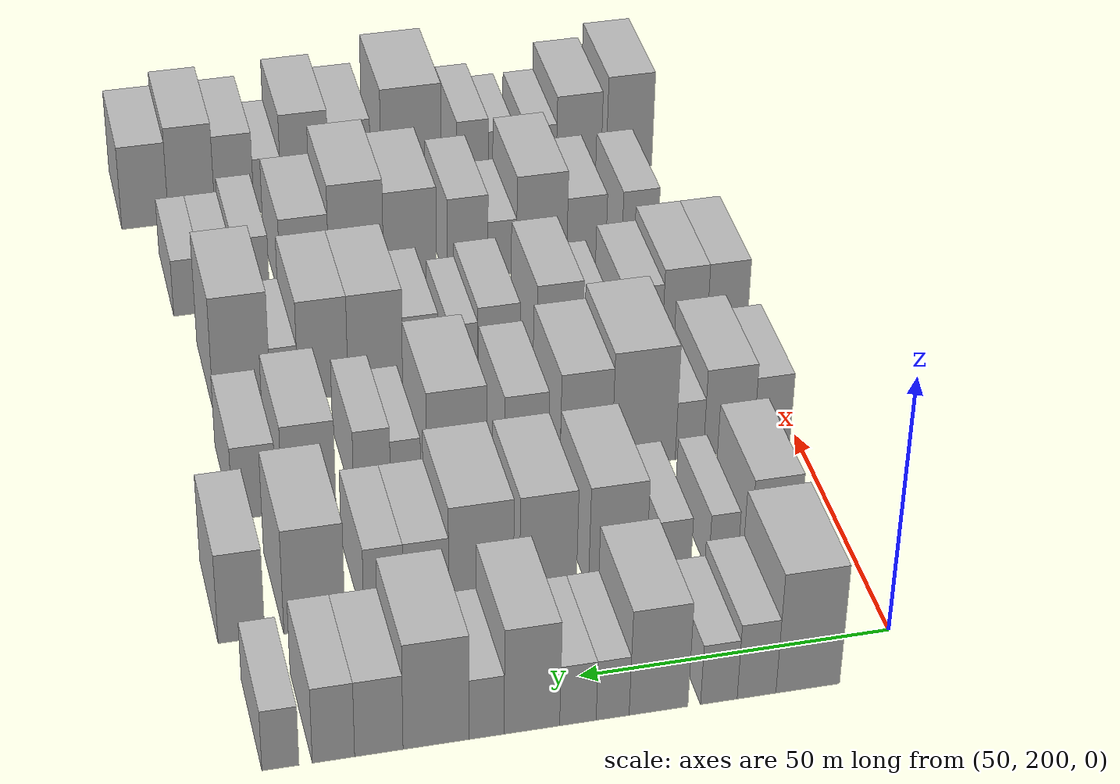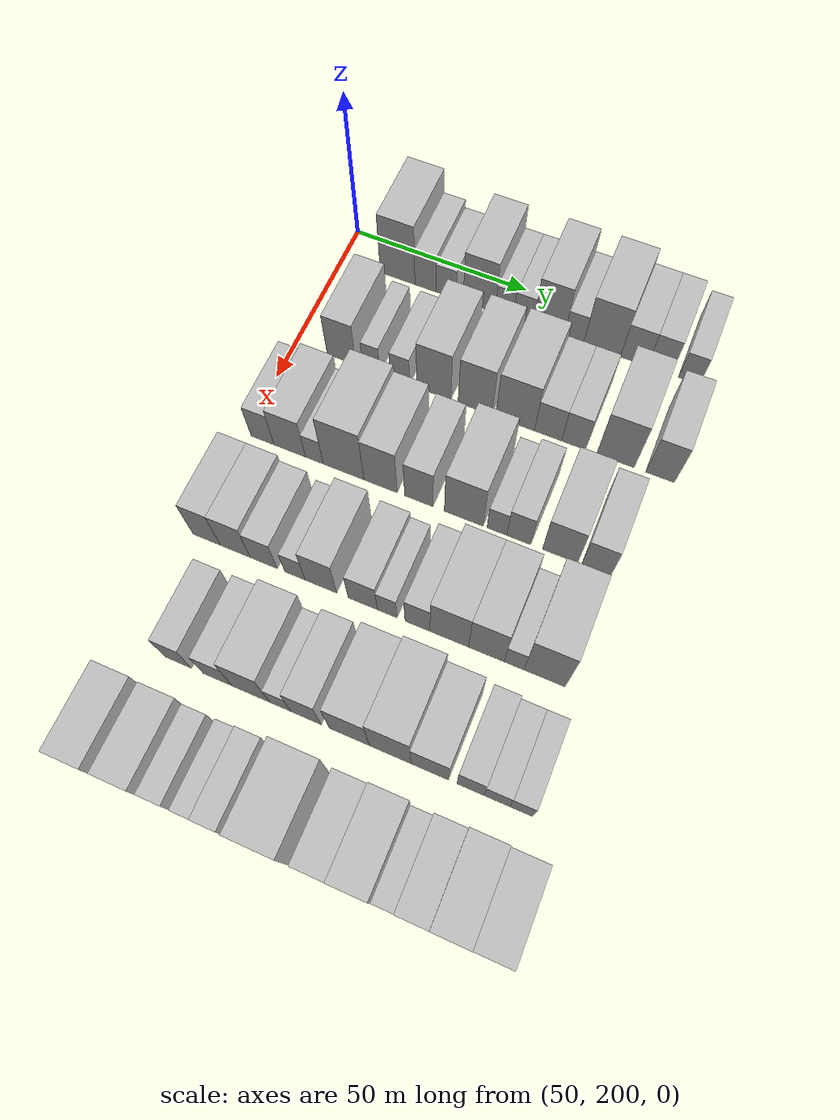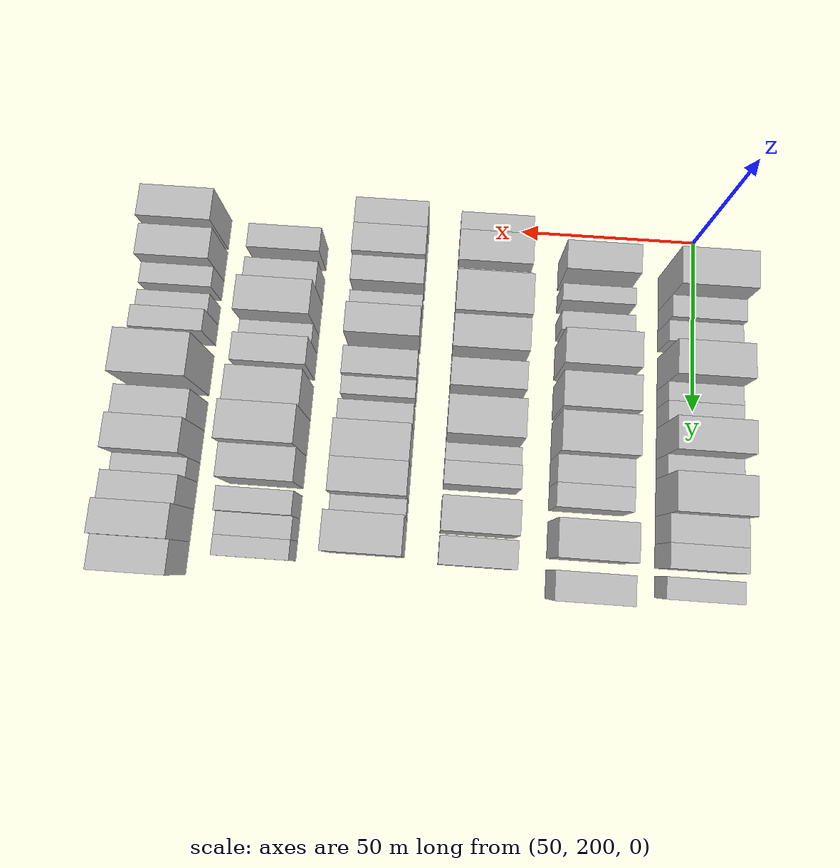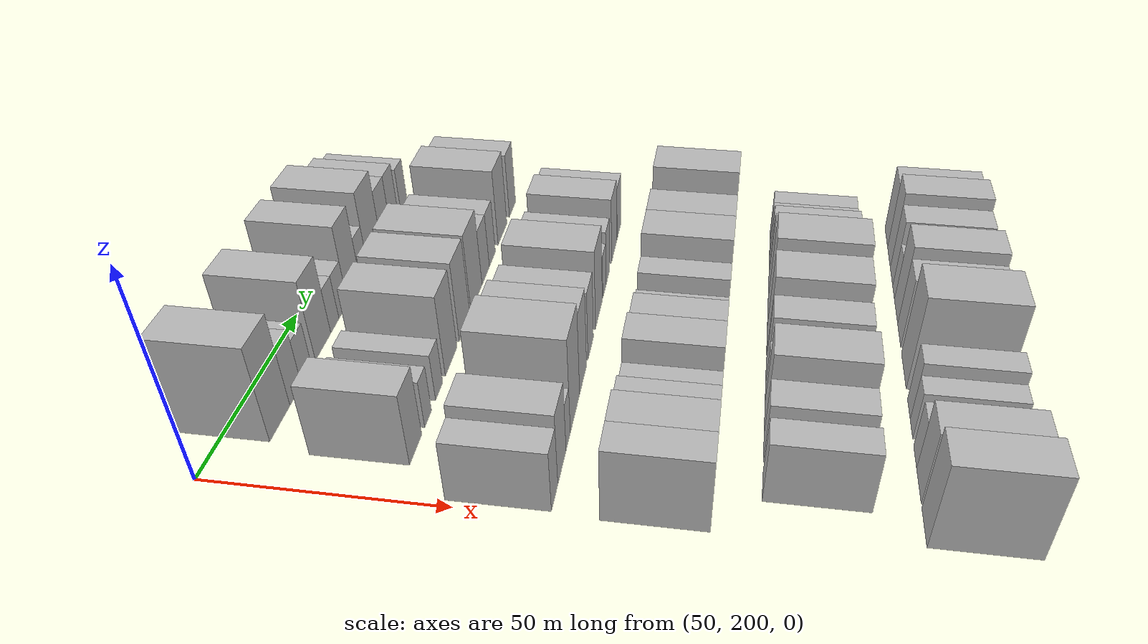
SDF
<sdf version="1.6">
 <world name="default">
  <model name="building_78">
   <static>1</static>
   <pose>50.0000 216.4275 0 0.000000 0.000000 0.000000</pose>
   <link name="link">
    <pose>0 0 12.00 0 0 0</pose>
    <collision name="collision"><geometry><box><size>20.0000 10.1967 24.0000</size></box></geometry></collision>
    <visual name="visual">
     <cast_shadows>0</cast_shadows>
     <geometry><box><size>20.0000 10.1967 24.0000</size></box></geometry>
     <material>
      <script>
       <uri>model://HANNAS_wall/materials/scripts</uri>
       <uri>model://HANNAS_wall/materials/textures</uri>
       <name>vrc/HANNAS_wall</name>
      </script>
     </material>
    </visual>
   </link>
  </model>
  <model name="building_79">
   <static>1</static>
   <pose>50.0000 224.6116 0 0.000000 0.000000 0.000000</pose>
   <link name="link">
    <pose>0 0 7.50 0 0 0</pose>
    <collision name="collision"><geometry><box><size>20.0000 6.1714 15.0000</size></box></geometry></collision>
    <visual name="visual">
     <cast_shadows>0</cast_shadows>
     <geometry><box><size>20.0000 6.1714 15.0000</size></box></geometry>
     <material>
      <script>
       <uri>model://HANNAS_wall/materials/scripts</uri>
       <uri>model://HANNAS_wall/materials/textures</uri>
       <name>vrc/HANNAS_wall</name>
      </script>
     </material>
    </visual>
   </link>
  </model>
  <model name="building_80">
   <static>1</static>
   <pose>50.0000 230.5987 0 0.000000 0.000000 0.000000</pose>
   <link name="link">
    <pose>0 0 6.00 0 0 0</pose>
    <collision name="collision"><geometry><box><size>20.0000 5.8029 12.0000</size></box></geometry></collision>
    <visual name="visual">
     <cast_shadows>0</cast_shadows>
     <geometry><box><size>20.0000 5.8029 12.0000</size></box></geometry>
     <material>
      <script>
       <uri>model://HANNAS_wall/materials/scripts</uri>
       <uri>model://HANNAS_wall/materials/textures</uri>
       <name>vrc/HANNAS_wall</name>
      </script>
     </material>
    </visual>
   </link>
  </model>
  <model name="building_81">
   <static>1</static>
   <pose>50.0000 240.1292 0 0.000000 0.000000 0.000000</pose>
   <link name="link">
    <pose>0 0 10.50 0 0 0</pose>
    <collision name="collision"><geometry><box><size>20.0000 9.2581 21.0000</size></box></geometry></collision>
    <visual name="visual">
     <cast_shadows>0</cast_shadows>
     <geometry><box><size>20.0000 9.2581 21.0000</size></box></geometry>
     <material>
      <script>
       <uri>model://HANNAS_wall/materials/scripts</uri>
       <uri>model://HANNAS_wall/materials/textures</uri>
       <name>vrc/HANNAS_wall</name>
      </script>
     </material>
    </visual>
   </link>
  </model>
  <model name="building_82">
   <static>1</static>
   <pose>50.0000 247.3416 0 0.000000 0.000000 0.000000</pose>
   <link name="link">
    <pose>0 0 6.00 0 0 0</pose>
    <collision name="collision"><geometry><box><size>20.0000 5.1668 12.0000</size></box></geometry></collision>
    <visual name="visual">
     <cast_shadows>0</cast_shadows>
     <geometry><box><size>20.0000 5.1668 12.0000</size></box></geometry>
     <material>
      <script>
       <uri>model://HANNAS_wall/materials/scripts</uri>
       <uri>model://HANNAS_wall/materials/textures</uri>
       <name>vrc/HANNAS_wall</name>
      </script>
     </material>
    </visual>
   </link>
  </model>
  <model name="building_83">
   <static>1</static>
   <pose>50.0000 252.7726 0 0.000000 0.000000 0.000000</pose>
   <link name="link">
    <pose>0 0 6.00 0 0 0</pose>
    <collision name="collision"><geometry><box><size>20.0000 5.6951 12.0000</size></box></geometry></collision>
    <visual name="visual">
     <cast_shadows>0</cast_shadows>
     <geometry><box><size>20.0000 5.6951 12.0000</size></box></geometry>
     <material>
      <script>
       <uri>model://HANNAS_wall/materials/scripts</uri>
       <uri>model://HANNAS_wall/materials/textures</uri>
       <name>vrc/HANNAS_wall</name>
      </script>
     </material>
    </visual>
   </link>
  </model>
  <model name="building_84">
   <static>1</static>
   <pose>50.0000 259.9473 0 0.000000 0.000000 0.000000</pose>
   <link name="link">
    <pose>0 0 10.50 0 0 0</pose>
    <collision name="collision"><geometry><box><size>20.0000 8.6542 21.0000</size></box></geometry></collision>
    <visual name="visual">
     <cast_shadows>0</cast_shadows>
     <geometry><box><size>20.0000 8.6542 21.0000</size></box></geometry>
     <material>
      <script>
       <uri>model://HANNAS_wall/materials/scripts</uri>
       <uri>model://HANNAS_wall/materials/textures</uri>
       <name>vrc/HANNAS_wall</name>
      </script>
     </material>
    </visual>
   </link>
  </model>
  <model name="building_85">
   <static>1</static>
   <pose>50.0000 266.9659 0 0.000000 0.000000 0.000000</pose>
   <link name="link">
    <pose>0 0 6.00 0 0 0</pose>
    <collision name="collision"><geometry><box><size>20.0000 5.3829 12.0000</size></box></geometry></collision>
    <visual name="visual">
     <cast_shadows>0</cast_shadows>
     <geometry><box><size>20.0000 5.3829 12.0000</size></box></geometry>
     <material>
      <script>
       <uri>model://HANNAS_wall/materials/scripts</uri>
       <uri>model://HANNAS_wall/materials/textures</uri>
       <name>vrc/HANNAS_wall</name>
      </script>
     </material>
    </visual>
   </link>
  </model>
  <model name="building_86">
   <static>1</static>
   <pose>50.0000 274.7213 0 0.000000 0.000000 0.000000</pose>
   <link name="link">
    <pose>0 0 10.50 0 0 0</pose>
    <collision name="collision"><geometry><box><size>20.0000 10.1280 21.0000</size></box></geometry></collision>
    <visual name="visual">
     <cast_shadows>0</cast_shadows>
     <geometry><box><size>20.0000 10.1280 21.0000</size></box></geometry>
     <material>
      <script>
       <uri>model://HANNAS_wall/materials/scripts</uri>
       <uri>model://HANNAS_wall/materials/textures</uri>
       <name>vrc/HANNAS_wall</name>
      </script>
     </material>
    </visual>
   </link>
  </model>
  <model name="building_87">
   <static>1</static>
   <pose>50.0000 283.4766 0 0.000000 0.000000 0.000000</pose>
   <link name="link">
    <pose>0 0 7.50 0 0 0</pose>
    <collision name="collision"><geometry><box><size>20.0000 7.3825 15.0000</size></box></geometry></collision>
    <visual name="visual">
     <cast_shadows>0</cast_shadows>
     <geometry><box><size>20.0000 7.3825 15.0000</size></box></geometry>
     <material>
      <script>
       <uri>model://HANNAS_wall/materials/scripts</uri>
       <uri>model://HANNAS_wall/materials/textures</uri>
       <name>vrc/HANNAS_wall</name>
      </script>
     </material>
    </visual>
   </link>
  </model>
  <model name="building_88">
   <static>1</static>
   <pose>50.0000 290.3826 0 0.000000 0.000000 0.000000</pose>
   <link name="link">
    <pose>0 0 7.50 0 0 0</pose>
    <collision name="collision"><geometry><box><size>20.0000 6.4296 15.0000</size></box></geometry></collision>
    <visual name="visual">
     <cast_shadows>0</cast_shadows>
     <geometry><box><size>20.0000 6.4296 15.0000</size></box></geometry>
     <material>
      <script>
       <uri>model://HANNAS_wall/materials/scripts</uri>
       <uri>model://HANNAS_wall/materials/textures</uri>
       <name>vrc/HANNAS_wall</name>
      </script>
     </material>
    </visual>
   </link>
  </model>
  <model name="building_89">
   <static>1</static>
   <pose>50.0000 298.4039 0 0.000000 0.000000 0.000000</pose>
   <link name="link">
    <pose>0 0 6.00 0 0 0</pose>
    <collision name="collision"><geometry><box><size>20.0000 5.6130 12.0000</size></box></geometry></collision>
    <visual name="visual">
     <cast_shadows>0</cast_shadows>
     <geometry><box><size>20.0000 5.6130 12.0000</size></box></geometry>
     <material>
      <script>
       <uri>model://HANNAS_wall/materials/scripts</uri>
       <uri>model://HANNAS_wall/materials/textures</uri>
       <name>vrc/HANNAS_wall</name>
      </script>
     </material>
    </visual>
   </link>
  </model>
  <model name="building_187">
   <static>1</static>
   <pose>79.0000 213.1528 0 0.000000 0.000000 0.000000</pose>
   <link name="link">
    <pose>0 0 9.00 0 0 0</pose>
    <collision name="collision"><geometry><box><size>20.0000 8.1714 18.0000</size></box></geometry></collision>
    <visual name="visual">
     <cast_shadows>0</cast_shadows>
     <geometry><box><size>20.0000 8.1714 18.0000</size></box></geometry>
     <material>
      <script>
       <uri>model://HANNAS_wall/materials/scripts</uri>
       <uri>model://HANNAS_wall/materials/textures</uri>
       <name>vrc/HANNAS_wall</name>
      </script>
     </material>
    </visual>
   </link>
  </model>
  <model name="building_188">
   <static>1</static>
   <pose>79.0000 221.6560 0 0.000000 0.000000 0.000000</pose>
   <link name="link">
    <pose>0 0 6.00 0 0 0</pose>
    <collision name="collision"><geometry><box><size>20.0000 4.8351 12.0000</size></box></geometry></collision>
    <visual name="visual">
     <cast_shadows>0</cast_shadows>
     <geometry><box><size>20.0000 4.8351 12.0000</size></box></geometry>
     <material>
      <script>
       <uri>model://HANNAS_wall/materials/scripts</uri>
       <uri>model://HANNAS_wall/materials/textures</uri>
       <name>vrc/HANNAS_wall</name>
      </script>
     </material>
    </visual>
   </link>
  </model>
  <model name="building_189">
   <static>1</static>
   <pose>79.0000 229.7714 0 0.000000 0.000000 0.000000</pose>
   <link name="link">
    <pose>0 0 6.00 0 0 0</pose>
    <collision name="collision"><geometry><box><size>20.0000 5.3957 12.0000</size></box></geometry></collision>
    <visual name="visual">
     <cast_shadows>0</cast_shadows>
     <geometry><box><size>20.0000 5.3957 12.0000</size></box></geometry>
     <material>
      <script>
       <uri>model://HANNAS_wall/materials/scripts</uri>
       <uri>model://HANNAS_wall/materials/textures</uri>
       <name>vrc/HANNAS_wall</name>
      </script>
     </material>
    </visual>
   </link>
  </model>
  <model name="building_190">
   <static>1</static>
   <pose>79.0000 239.1947 0 0.000000 0.000000 0.000000</pose>
   <link name="link">
    <pose>0 0 10.50 0 0 0</pose>
    <collision name="collision"><geometry><box><size>20.0000 9.4509 21.0000</size></box></geometry></collision>
    <visual name="visual">
     <cast_shadows>0</cast_shadows>
     <geometry><box><size>20.0000 9.4509 21.0000</size></box></geometry>
     <material>
      <script>
       <uri>model://HANNAS_wall/materials/scripts</uri>
       <uri>model://HANNAS_wall/materials/textures</uri>
       <name>vrc/HANNAS_wall</name>
      </script>
     </material>
    </visual>
   </link>
  </model>
  <model name="building_191">
   <static>1</static>
   <pose>79.0000 250.5725 0 0.000000 0.000000 0.000000</pose>
   <link name="link">
    <pose>0 0 10.50 0 0 0</pose>
    <collision name="collision"><geometry><box><size>20.0000 9.3048 21.0000</size></box></geometry></collision>
    <visual name="visual">
     <cast_shadows>0</cast_shadows>
     <geometry><box><size>20.0000 9.3048 21.0000</size></box></geometry>
     <material>
      <script>
       <uri>model://HANNAS_wall/materials/scripts</uri>
       <uri>model://HANNAS_wall/materials/textures</uri>
       <name>vrc/HANNAS_wall</name>
      </script>
     </material>
    </visual>
   </link>
  </model>
  <model name="building_192">
   <static>1</static>
   <pose>79.0000 261.4567 0 0.000000 0.000000 0.000000</pose>
   <link name="link">
    <pose>0 0 10.50 0 0 0</pose>
    <collision name="collision"><geometry><box><size>20.0000 10.4636 21.0000</size></box></geometry></collision>
    <visual name="visual">
     <cast_shadows>0</cast_shadows>
     <geometry><box><size>20.0000 10.4636 21.0000</size></box></geometry>
     <material>
      <script>
       <uri>model://HANNAS_wall/materials/scripts</uri>
       <uri>model://HANNAS_wall/materials/textures</uri>
       <name>vrc/HANNAS_wall</name>
      </script>
     </material>
    </visual>
   </link>
  </model>
  <model name="building_193">
   <static>1</static>
   <pose>79.0000 270.3257 0 0.000000 0.000000 0.000000</pose>
   <link name="link">
    <pose>0 0 7.50 0 0 0</pose>
    <collision name="collision"><geometry><box><size>20.0000 7.2743 15.0000</size></box></geometry></collision>
    <visual name="visual">
     <cast_shadows>0</cast_shadows>
     <geometry><box><size>20.0000 7.2743 15.0000</size></box></geometry>
     <material>
      <script>
       <uri>model://HANNAS_wall/materials/scripts</uri>
       <uri>model://HANNAS_wall/materials/textures</uri>
       <name>vrc/HANNAS_wall</name>
      </script>
     </material>
    </visual>
   </link>
  </model>
  <model name="building_194">
   <static>1</static>
   <pose>79.0000 277.1290 0 0.000000 0.000000 0.000000</pose>
   <link name="link">
    <pose>0 0 7.50 0 0 0</pose>
    <collision name="collision"><geometry><box><size>20.0000 6.3323 15.0000</size></box></geometry></collision>
    <visual name="visual">
     <cast_shadows>0</cast_shadows>
     <geometry><box><size>20.0000 6.3323 15.0000</size></box></geometry>
     <material>
      <script>
       <uri>model://HANNAS_wall/materials/scripts</uri>
       <uri>model://HANNAS_wall/materials/textures</uri>
       <name>vrc/HANNAS_wall</name>
      </script>
     </material>
    </visual>
   </link>
  </model>
  <model name="building_195">
   <static>1</static>
   <pose>79.0000 288.1786 0 0.000000 0.000000 0.000000</pose>
   <link name="link">
    <pose>0 0 10.50 0 0 0</pose>
    <collision name="collision"><geometry><box><size>20.0000 9.7671 21.0000</size></box></geometry></collision>
    <visual name="visual">
     <cast_shadows>0</cast_shadows>
     <geometry><box><size>20.0000 9.7671 21.0000</size></box></geometry>
     <material>
      <script>
       <uri>model://HANNAS_wall/materials/scripts</uri>
       <uri>model://HANNAS_wall/materials/textures</uri>
       <name>vrc/HANNAS_wall</name>
      </script>
     </material>
    </visual>
   </link>
  </model>
  <model name="building_196">
   <static>1</static>
   <pose>79.0000 299.7632 0 0.000000 0.000000 0.000000</pose>
   <link name="link">
    <pose>0 0 9.00 0 0 0</pose>
    <collision name="collision"><geometry><box><size>20.0000 7.4019 18.0000</size></box></geometry></collision>
    <visual name="visual">
     <cast_shadows>0</cast_shadows>
     <geometry><box><size>20.0000 7.4019 18.0000</size></box></geometry>
     <material>
      <script>
       <uri>model://HANNAS_wall/materials/scripts</uri>
       <uri>model://HANNAS_wall/materials/textures</uri>
       <name>vrc/HANNAS_wall</name>
      </script>
     </material>
    </visual>
   </link>
  </model>
  <model name="building_296">
   <static>1</static>
   <pose>108.0000 204.8073 0 0.000000 0.000000 0.000000</pose>
   <link name="link">
    <pose>0 0 7.50 0 0 0</pose>
    <collision name="collision"><geometry><box><size>20.0000 6.4328 15.0000</size></box></geometry></collision>
    <visual name="visual">
     <cast_shadows>0</cast_shadows>
     <geometry><box><size>20.0000 6.4328 15.0000</size></box></geometry>
     <material>
      <script>
       <uri>model://HANNAS_wall/materials/scripts</uri>
       <uri>model://HANNAS_wall/materials/textures</uri>
       <name>vrc/HANNAS_wall</name>
      </script>
     </material>
    </visual>
   </link>
  </model>
  <model name="building_297">
   <static>1</static>
   <pose>108.0000 212.3891 0 0.000000 0.000000 0.000000</pose>
   <link name="link">
    <pose>0 0 9.00 0 0 0</pose>
    <collision name="collision"><geometry><box><size>20.0000 8.7310 18.0000</size></box></geometry></collision>
    <visual name="visual">
     <cast_shadows>0</cast_shadows>
     <geometry><box><size>20.0000 8.7310 18.0000</size></box></geometry>
     <material>
      <script>
       <uri>model://HANNAS_wall/materials/scripts</uri>
       <uri>model://HANNAS_wall/materials/textures</uri>
       <name>vrc/HANNAS_wall</name>
      </script>
     </material>
    </visual>
   </link>
  </model>
  <model name="building_298">
   <static>1</static>
   <pose>108.0000 219.2011 0 0.000000 0.000000 0.000000</pose>
   <link name="link">
    <pose>0 0 6.00 0 0 0</pose>
    <collision name="collision"><geometry><box><size>20.0000 4.8929 12.0000</size></box></geometry></collision>
    <visual name="visual">
     <cast_shadows>0</cast_shadows>
     <geometry><box><size>20.0000 4.8929 12.0000</size></box></geometry>
     <material>
      <script>
       <uri>model://HANNAS_wall/materials/scripts</uri>
       <uri>model://HANNAS_wall/materials/textures</uri>
       <name>vrc/HANNAS_wall</name>
      </script>
     </material>
    </visual>
   </link>
  </model>
  <model name="building_299">
   <static>1</static>
   <pose>108.0000 227.1770 0 0.000000 0.000000 0.000000</pose>
   <link name="link">
    <pose>0 0 12.00 0 0 0</pose>
    <collision name="collision"><geometry><box><size>20.0000 11.0591 24.0000</size></box></geometry></collision>
    <visual name="visual">
     <cast_shadows>0</cast_shadows>
     <geometry><box><size>20.0000 11.0591 24.0000</size></box></geometry>
     <material>
      <script>
       <uri>model://HANNAS_wall/materials/scripts</uri>
       <uri>model://HANNAS_wall/materials/textures</uri>
       <name>vrc/HANNAS_wall</name>
      </script>
     </material>
    </visual>
   </link>
  </model>
  <model name="building_300">
   <static>1</static>
   <pose>108.0000 237.1638 0 0.000000 0.000000 0.000000</pose>
   <link name="link">
    <pose>0 0 10.50 0 0 0</pose>
    <collision name="collision"><geometry><box><size>20.0000 8.9144 21.0000</size></box></geometry></collision>
    <visual name="visual">
     <cast_shadows>0</cast_shadows>
     <geometry><box><size>20.0000 8.9144 21.0000</size></box></geometry>
     <material>
      <script>
       <uri>model://HANNAS_wall/materials/scripts</uri>
       <uri>model://HANNAS_wall/materials/textures</uri>
       <name>vrc/HANNAS_wall</name>
      </script>
     </material>
    </visual>
   </link>
  </model>
  <model name="building_301">
   <static>1</static>
   <pose>108.0000 247.3811 0 0.000000 0.000000 0.000000</pose>
   <link name="link">
    <pose>0 0 9.00 0 0 0</pose>
    <collision name="collision"><geometry><box><size>20.0000 7.5202 18.0000</size></box></geometry></collision>
    <visual name="visual">
     <cast_shadows>0</cast_shadows>
     <geometry><box><size>20.0000 7.5202 18.0000</size></box></geometry>
     <material>
      <script>
       <uri>model://HANNAS_wall/materials/scripts</uri>
       <uri>model://HANNAS_wall/materials/textures</uri>
       <name>vrc/HANNAS_wall</name>
      </script>
     </material>
    </visual>
   </link>
  </model>
  <model name="building_302">
   <static>1</static>
   <pose>108.0000 259.2140 0 0.000000 0.000000 0.000000</pose>
   <link name="link">
    <pose>0 0 10.50 0 0 0</pose>
    <collision name="collision"><geometry><box><size>20.0000 10.1456 21.0000</size></box></geometry></collision>
    <visual name="visual">
     <cast_shadows>0</cast_shadows>
     <geometry><box><size>20.0000 10.1456 21.0000</size></box></geometry>
     <material>
      <script>
       <uri>model://HANNAS_wall/materials/scripts</uri>
       <uri>model://HANNAS_wall/materials/textures</uri>
       <name>vrc/HANNAS_wall</name>
      </script>
     </material>
    </visual>
   </link>
  </model>
  <model name="building_303">
   <static>1</static>
   <pose>108.0000 267.8249 0 0.000000 0.000000 0.000000</pose>
   <link name="link">
    <pose>0 0 6.00 0 0 0</pose>
    <collision name="collision"><geometry><box><size>20.0000 5.0761 12.0000</size></box></geometry></collision>
    <visual name="visual">
     <cast_shadows>0</cast_shadows>
     <geometry><box><size>20.0000 5.0761 12.0000</size></box></geometry>
     <material>
      <script>
       <uri>model://HANNAS_wall/materials/scripts</uri>
       <uri>model://HANNAS_wall/materials/textures</uri>
       <name>vrc/HANNAS_wall</name>
      </script>
     </material>
    </visual>
   </link>
  </model>
  <model name="building_304">
   <static>1</static>
   <pose>108.0000 273.4469 0 0.000000 0.000000 0.000000</pose>
   <link name="link">
    <pose>0 0 7.50 0 0 0</pose>
    <collision name="collision"><geometry><box><size>20.0000 6.1680 15.0000</size></box></geometry></collision>
    <visual name="visual">
     <cast_shadows>0</cast_shadows>
     <geometry><box><size>20.0000 6.1680 15.0000</size></box></geometry>
     <material>
      <script>
       <uri>model://HANNAS_wall/materials/scripts</uri>
       <uri>model://HANNAS_wall/materials/textures</uri>
       <name>vrc/HANNAS_wall</name>
      </script>
     </material>
    </visual>
   </link>
  </model>
  <model name="building_305">
   <static>1</static>
   <pose>108.0000 283.9947 0 0.000000 0.000000 0.000000</pose>
   <link name="link">
    <pose>0 0 9.00 0 0 0</pose>
    <collision name="collision"><geometry><box><size>20.0000 8.9275 18.0000</size></box></geometry></collision>
    <visual name="visual">
     <cast_shadows>0</cast_shadows>
     <geometry><box><size>20.0000 8.9275 18.0000</size></box></geometry>
     <material>
      <script>
       <uri>model://HANNAS_wall/materials/scripts</uri>
       <uri>model://HANNAS_wall/materials/textures</uri>
       <name>vrc/HANNAS_wall</name>
      </script>
     </material>
    </visual>
   </link>
  </model>
  <model name="building_306">
   <static>1</static>
   <pose>108.0000 293.0929 0 0.000000 0.000000 0.000000</pose>
   <link name="link">
    <pose>0 0 7.50 0 0 0</pose>
    <collision name="collision"><geometry><box><size>20.0000 7.2691 15.0000</size></box></geometry></collision>
    <visual name="visual">
     <cast_shadows>0</cast_shadows>
     <geometry><box><size>20.0000 7.2691 15.0000</size></box></geometry>
     <material>
      <script>
       <uri>model://HANNAS_wall/materials/scripts</uri>
       <uri>model://HANNAS_wall/materials/textures</uri>
       <name>vrc/HANNAS_wall</name>
      </script>
     </material>
    </visual>
   </link>
  </model>
  <model name="building_411">
   <static>1</static>
   <pose>137.0000 204.4413 0 0.000000 0.000000 0.000000</pose>
   <link name="link">
    <pose>0 0 9.00 0 0 0</pose>
    <collision name="collision"><geometry><box><size>20.0000 7.3548 18.0000</size></box></geometry></collision>
    <visual name="visual">
     <cast_shadows>0</cast_shadows>
     <geometry><box><size>20.0000 7.3548 18.0000</size></box></geometry>
     <material>
      <script>
       <uri>model://HANNAS_wall/materials/scripts</uri>
       <uri>model://HANNAS_wall/materials/textures</uri>
       <name>vrc/HANNAS_wall</name>
      </script>
     </material>
    </visual>
   </link>
  </model>
  <model name="building_412">
   <static>1</static>
   <pose>137.0000 212.1602 0 0.000000 0.000000 0.000000</pose>
   <link name="link">
    <pose>0 0 9.00 0 0 0</pose>
    <collision name="collision"><geometry><box><size>20.0000 8.0830 18.0000</size></box></geometry></collision>
    <visual name="visual">
     <cast_shadows>0</cast_shadows>
     <geometry><box><size>20.0000 8.0830 18.0000</size></box></geometry>
     <material>
      <script>
       <uri>model://HANNAS_wall/materials/scripts</uri>
       <uri>model://HANNAS_wall/materials/textures</uri>
       <name>vrc/HANNAS_wall</name>
      </script>
     </material>
    </visual>
   </link>
  </model>
  <model name="building_413">
   <static>1</static>
   <pose>137.0000 219.7534 0 0.000000 0.000000 0.000000</pose>
   <link name="link">
    <pose>0 0 7.50 0 0 0</pose>
    <collision name="collision"><geometry><box><size>20.0000 7.1034 15.0000</size></box></geometry></collision>
    <visual name="visual">
     <cast_shadows>0</cast_shadows>
     <geometry><box><size>20.0000 7.1034 15.0000</size></box></geometry>
     <material>
      <script>
       <uri>model://HANNAS_wall/materials/scripts</uri>
       <uri>model://HANNAS_wall/materials/textures</uri>
       <name>vrc/HANNAS_wall</name>
      </script>
     </material>
    </visual>
   </link>
  </model>
  <model name="building_414">
   <static>1</static>
   <pose>137.0000 227.9537 0 0.000000 0.000000 0.000000</pose>
   <link name="link">
    <pose>0 0 6.00 0 0 0</pose>
    <collision name="collision"><geometry><box><size>20.0000 5.2973 12.0000</size></box></geometry></collision>
    <visual name="visual">
     <cast_shadows>0</cast_shadows>
     <geometry><box><size>20.0000 5.2973 12.0000</size></box></geometry>
     <material>
      <script>
       <uri>model://HANNAS_wall/materials/scripts</uri>
       <uri>model://HANNAS_wall/materials/textures</uri>
       <name>vrc/HANNAS_wall</name>
      </script>
     </material>
    </visual>
   </link>
  </model>
  <model name="building_415">
   <static>1</static>
   <pose>137.0000 234.7116 0 0.000000 0.000000 0.000000</pose>
   <link name="link">
    <pose>0 0 9.00 0 0 0</pose>
    <collision name="collision"><geometry><box><size>20.0000 8.2183 18.0000</size></box></geometry></collision>
    <visual name="visual">
     <cast_shadows>0</cast_shadows>
     <geometry><box><size>20.0000 8.2183 18.0000</size></box></geometry>
     <material>
      <script>
       <uri>model://HANNAS_wall/materials/scripts</uri>
       <uri>model://HANNAS_wall/materials/textures</uri>
       <name>vrc/HANNAS_wall</name>
      </script>
     </material>
    </visual>
   </link>
  </model>
  <model name="building_416">
   <static>1</static>
   <pose>137.0000 245.5550 0 0.000000 0.000000 0.000000</pose>
   <link name="link">
    <pose>0 0 7.50 0 0 0</pose>
    <collision name="collision"><geometry><box><size>20.0000 7.4685 15.0000</size></box></geometry></collision>
    <visual name="visual">
     <cast_shadows>0</cast_shadows>
     <geometry><box><size>20.0000 7.4685 15.0000</size></box></geometry>
     <material>
      <script>
       <uri>model://HANNAS_wall/materials/scripts</uri>
       <uri>model://HANNAS_wall/materials/textures</uri>
       <name>vrc/HANNAS_wall</name>
      </script>
     </material>
    </visual>
   </link>
  </model>
  <model name="building_417">
   <static>1</static>
   <pose>137.0000 251.7862 0 0.000000 0.000000 0.000000</pose>
   <link name="link">
    <pose>0 0 6.00 0 0 0</pose>
    <collision name="collision"><geometry><box><size>20.0000 4.9939 12.0000</size></box></geometry></collision>
    <visual name="visual">
     <cast_shadows>0</cast_shadows>
     <geometry><box><size>20.0000 4.9939 12.0000</size></box></geometry>
     <material>
      <script>
       <uri>model://HANNAS_wall/materials/scripts</uri>
       <uri>model://HANNAS_wall/materials/textures</uri>
       <name>vrc/HANNAS_wall</name>
      </script>
     </material>
    </visual>
   </link>
  </model>
  <model name="building_418">
   <static>1</static>
   <pose>137.0000 259.4112 0 0.000000 0.000000 0.000000</pose>
   <link name="link">
    <pose>0 0 7.50 0 0 0</pose>
    <collision name="collision"><geometry><box><size>20.0000 6.2563 15.0000</size></box></geometry></collision>
    <visual name="visual">
     <cast_shadows>0</cast_shadows>
     <geometry><box><size>20.0000 6.2563 15.0000</size></box></geometry>
     <material>
      <script>
       <uri>model://HANNAS_wall/materials/scripts</uri>
       <uri>model://HANNAS_wall/materials/textures</uri>
       <name>vrc/HANNAS_wall</name>
      </script>
     </material>
    </visual>
   </link>
  </model>
  <model name="building_419">
   <static>1</static>
   <pose>137.0000 267.3444 0 0.000000 0.000000 0.000000</pose>
   <link name="link">
    <pose>0 0 10.50 0 0 0</pose>
    <collision name="collision"><geometry><box><size>20.0000 9.6101 21.0000</size></box></geometry></collision>
    <visual name="visual">
     <cast_shadows>0</cast_shadows>
     <geometry><box><size>20.0000 9.6101 21.0000</size></box></geometry>
     <material>
      <script>
       <uri>model://HANNAS_wall/materials/scripts</uri>
       <uri>model://HANNAS_wall/materials/textures</uri>
       <name>vrc/HANNAS_wall</name>
      </script>
     </material>
    </visual>
   </link>
  </model>
  <model name="building_420">
   <static>1</static>
   <pose>137.0000 276.5216 0 0.000000 0.000000 0.000000</pose>
   <link name="link">
    <pose>0 0 10.50 0 0 0</pose>
    <collision name="collision"><geometry><box><size>20.0000 8.7443 21.0000</size></box></geometry></collision>
    <visual name="visual">
     <cast_shadows>0</cast_shadows>
     <geometry><box><size>20.0000 8.7443 21.0000</size></box></geometry>
     <material>
      <script>
       <uri>model://HANNAS_wall/materials/scripts</uri>
       <uri>model://HANNAS_wall/materials/textures</uri>
       <name>vrc/HANNAS_wall</name>
      </script>
     </material>
    </visual>
   </link>
  </model>
  <model name="building_421">
   <static>1</static>
   <pose>137.0000 283.2992 0 0.000000 0.000000 0.000000</pose>
   <link name="link">
    <pose>0 0 6.00 0 0 0</pose>
    <collision name="collision"><geometry><box><size>20.0000 4.8108 12.0000</size></box></geometry></collision>
    <visual name="visual">
     <cast_shadows>0</cast_shadows>
     <geometry><box><size>20.0000 4.8108 12.0000</size></box></geometry>
     <material>
      <script>
       <uri>model://HANNAS_wall/materials/scripts</uri>
       <uri>model://HANNAS_wall/materials/textures</uri>
       <name>vrc/HANNAS_wall</name>
      </script>
     </material>
    </visual>
   </link>
  </model>
  <model name="building_422">
   <static>1</static>
   <pose>137.0000 290.6682 0 0.000000 0.000000 0.000000</pose>
   <link name="link">
    <pose>0 0 12.00 0 0 0</pose>
    <collision name="collision"><geometry><box><size>20.0000 9.9272 24.0000</size></box></geometry></collision>
    <visual name="visual">
     <cast_shadows>0</cast_shadows>
     <geometry><box><size>20.0000 9.9272 24.0000</size></box></geometry>
     <material>
      <script>
       <uri>model://HANNAS_wall/materials/scripts</uri>
       <uri>model://HANNAS_wall/materials/textures</uri>
       <name>vrc/HANNAS_wall</name>
      </script>
     </material>
    </visual>
   </link>
  </model>
  <model name="building_529">
   <static>1</static>
   <pose>166.0000 212.5952 0 0.000000 0.000000 0.000000</pose>
   <link name="link">
    <pose>0 0 7.50 0 0 0</pose>
    <collision name="collision"><geometry><box><size>20.0000 6.7986 15.0000</size></box></geometry></collision>
    <visual name="visual">
     <cast_shadows>0</cast_shadows>
     <geometry><box><size>20.0000 6.7986 15.0000</size></box></geometry>
     <material>
      <script>
       <uri>model://HANNAS_wall/materials/scripts</uri>
       <uri>model://HANNAS_wall/materials/textures</uri>
       <name>vrc/HANNAS_wall</name>
      </script>
     </material>
    </visual>
   </link>
  </model>
  <model name="building_530">
   <static>1</static>
   <pose>166.0000 222.6682 0 0.000000 0.000000 0.000000</pose>
   <link name="link">
    <pose>0 0 7.50 0 0 0</pose>
    <collision name="collision"><geometry><box><size>20.0000 7.3474 15.0000</size></box></geometry></collision>
    <visual name="visual">
     <cast_shadows>0</cast_shadows>
     <geometry><box><size>20.0000 7.3474 15.0000</size></box></geometry>
     <material>
      <script>
       <uri>model://HANNAS_wall/materials/scripts</uri>
       <uri>model://HANNAS_wall/materials/textures</uri>
       <name>vrc/HANNAS_wall</name>
      </script>
     </material>
    </visual>
   </link>
  </model>
  <model name="building_531">
   <static>1</static>
   <pose>166.0000 231.0438 0 0.000000 0.000000 0.000000</pose>
   <link name="link">
    <pose>0 0 10.50 0 0 0</pose>
    <collision name="collision"><geometry><box><size>20.0000 9.4037 21.0000</size></box></geometry></collision>
    <visual name="visual">
     <cast_shadows>0</cast_shadows>
     <geometry><box><size>20.0000 9.4037 21.0000</size></box></geometry>
     <material>
      <script>
       <uri>model://HANNAS_wall/materials/scripts</uri>
       <uri>model://HANNAS_wall/materials/textures</uri>
       <name>vrc/HANNAS_wall</name>
      </script>
     </material>
    </visual>
   </link>
  </model>
  <model name="building_532">
   <static>1</static>
   <pose>166.0000 238.4055 0 0.000000 0.000000 0.000000</pose>
   <link name="link">
    <pose>0 0 6.00 0 0 0</pose>
    <collision name="collision"><geometry><box><size>20.0000 5.3198 12.0000</size></box></geometry></collision>
    <visual name="visual">
     <cast_shadows>0</cast_shadows>
     <geometry><box><size>20.0000 5.3198 12.0000</size></box></geometry>
     <material>
      <script>
       <uri>model://HANNAS_wall/materials/scripts</uri>
       <uri>model://HANNAS_wall/materials/textures</uri>
       <name>vrc/HANNAS_wall</name>
      </script>
     </material>
    </visual>
   </link>
  </model>
  <model name="building_533">
   <static>1</static>
   <pose>166.0000 244.8239 0 0.000000 0.000000 0.000000</pose>
   <link name="link">
    <pose>0 0 9.00 0 0 0</pose>
    <collision name="collision"><geometry><box><size>20.0000 7.5170 18.0000</size></box></geometry></collision>
    <visual name="visual">
     <cast_shadows>0</cast_shadows>
     <geometry><box><size>20.0000 7.5170 18.0000</size></box></geometry>
     <material>
      <script>
       <uri>model://HANNAS_wall/materials/scripts</uri>
       <uri>model://HANNAS_wall/materials/textures</uri>
       <name>vrc/HANNAS_wall</name>
      </script>
     </material>
    </visual>
   </link>
  </model>
  <model name="building_534">
   <static>1</static>
   <pose>166.0000 255.4326 0 0.000000 0.000000 0.000000</pose>
   <link name="link">
    <pose>0 0 10.50 0 0 0</pose>
    <collision name="collision"><geometry><box><size>20.0000 9.7003 21.0000</size></box></geometry></collision>
    <visual name="visual">
     <cast_shadows>0</cast_shadows>
     <geometry><box><size>20.0000 9.7003 21.0000</size></box></geometry>
     <material>
      <script>
       <uri>model://HANNAS_wall/materials/scripts</uri>
       <uri>model://HANNAS_wall/materials/textures</uri>
       <name>vrc/HANNAS_wall</name>
      </script>
     </material>
    </visual>
   </link>
  </model>
  <model name="building_535">
   <static>1</static>
   <pose>166.0000 265.2716 0 0.000000 0.000000 0.000000</pose>
   <link name="link">
    <pose>0 0 12.00 0 0 0</pose>
    <collision name="collision"><geometry><box><size>20.0000 9.9777 24.0000</size></box></geometry></collision>
    <visual name="visual">
     <cast_shadows>0</cast_shadows>
     <geometry><box><size>20.0000 9.9777 24.0000</size></box></geometry>
     <material>
      <script>
       <uri>model://HANNAS_wall/materials/scripts</uri>
       <uri>model://HANNAS_wall/materials/textures</uri>
       <name>vrc/HANNAS_wall</name>
      </script>
     </material>
    </visual>
   </link>
  </model>
  <model name="building_536">
   <static>1</static>
   <pose>166.0000 274.6755 0 0.000000 0.000000 0.000000</pose>
   <link name="link">
    <pose>0 0 9.00 0 0 0</pose>
    <collision name="collision"><geometry><box><size>20.0000 8.8301 18.0000</size></box></geometry></collision>
    <visual name="visual">
     <cast_shadows>0</cast_shadows>
     <geometry><box><size>20.0000 8.8301 18.0000</size></box></geometry>
     <material>
      <script>
       <uri>model://HANNAS_wall/materials/scripts</uri>
       <uri>model://HANNAS_wall/materials/textures</uri>
       <name>vrc/HANNAS_wall</name>
      </script>
     </material>
    </visual>
   </link>
  </model>
  <model name="building_537">
   <static>1</static>
   <pose>166.0000 284.2128 0 0.000000 0.000000 0.000000</pose>
   <link name="link">
    <pose>0 0 7.50 0 0 0</pose>
    <collision name="collision"><geometry><box><size>20.0000 6.2444 15.0000</size></box></geometry></collision>
    <visual name="visual">
     <cast_shadows>0</cast_shadows>
     <geometry><box><size>20.0000 6.2444 15.0000</size></box></geometry>
     <material>
      <script>
       <uri>model://HANNAS_wall/materials/scripts</uri>
       <uri>model://HANNAS_wall/materials/textures</uri>
       <name>vrc/HANNAS_wall</name>
      </script>
     </material>
    </visual>
   </link>
  </model>
  <model name="building_538">
   <static>1</static>
   <pose>166.0000 290.3075 0 0.000000 0.000000 0.000000</pose>
   <link name="link">
    <pose>0 0 6.00 0 0 0</pose>
    <collision name="collision"><geometry><box><size>20.0000 5.9450 12.0000</size></box></geometry></collision>
    <visual name="visual">
     <cast_shadows>0</cast_shadows>
     <geometry><box><size>20.0000 5.9450 12.0000</size></box></geometry>
     <material>
      <script>
       <uri>model://HANNAS_wall/materials/scripts</uri>
       <uri>model://HANNAS_wall/materials/textures</uri>
       <name>vrc/HANNAS_wall</name>
      </script>
     </material>
    </visual>
   </link>
  </model>
  <model name="building_539">
   <static>1</static>
   <pose>166.0000 295.8890 0 0.000000 0.000000 0.000000</pose>
   <link name="link">
    <pose>0 0 6.00 0 0 0</pose>
    <collision name="collision"><geometry><box><size>20.0000 5.2181 12.0000</size></box></geometry></collision>
    <visual name="visual">
     <cast_shadows>0</cast_shadows>
     <geometry><box><size>20.0000 5.2181 12.0000</size></box></geometry>
     <material>
      <script>
       <uri>model://HANNAS_wall/materials/scripts</uri>
       <uri>model://HANNAS_wall/materials/textures</uri>
       <name>vrc/HANNAS_wall</name>
      </script>
     </material>
    </visual>
   </link>
  </model>
  <model name="building_641">
   <static>1</static>
   <pose>195.0000 207.0305 0 0.000000 0.000000 0.000000</pose>
   <link name="link">
    <pose>0 0 10.50 0 0 0</pose>
    <collision name="collision"><geometry><box><size>20.0000 9.0334 21.0000</size></box></geometry></collision>
    <visual name="visual">
     <cast_shadows>0</cast_shadows>
     <geometry><box><size>20.0000 9.0334 21.0000</size></box></geometry>
     <material>
      <script>
       <uri>model://HANNAS_wall/materials/scripts</uri>
       <uri>model://HANNAS_wall/materials/textures</uri>
       <name>vrc/HANNAS_wall</name>
      </script>
     </material>
    </visual>
   </link>
  </model>
  <model name="building_642">
   <static>1</static>
   <pose>195.0000 216.9394 0 0.000000 0.000000 0.000000</pose>
   <link name="link">
    <pose>0 0 9.00 0 0 0</pose>
    <collision name="collision"><geometry><box><size>20.0000 8.7844 18.0000</size></box></geometry></collision>
    <visual name="visual">
     <cast_shadows>0</cast_shadows>
     <geometry><box><size>20.0000 8.7844 18.0000</size></box></geometry>
     <material>
      <script>
       <uri>model://HANNAS_wall/materials/scripts</uri>
       <uri>model://HANNAS_wall/materials/textures</uri>
       <name>vrc/HANNAS_wall</name>
      </script>
     </material>
    </visual>
   </link>
  </model>
  <model name="building_643">
   <static>1</static>
   <pose>195.0000 224.2873 0 0.000000 0.000000 0.000000</pose>
   <link name="link">
    <pose>0 0 6.00 0 0 0</pose>
    <collision name="collision"><geometry><box><size>20.0000 5.9113 12.0000</size></box></geometry></collision>
    <visual name="visual">
     <cast_shadows>0</cast_shadows>
     <geometry><box><size>20.0000 5.9113 12.0000</size></box></geometry>
     <material>
      <script>
       <uri>model://HANNAS_wall/materials/scripts</uri>
       <uri>model://HANNAS_wall/materials/textures</uri>
       <name>vrc/HANNAS_wall</name>
      </script>
     </material>
    </visual>
   </link>
  </model>
  <model name="building_644">
   <static>1</static>
   <pose>195.0000 231.9082 0 0.000000 0.000000 0.000000</pose>
   <link name="link">
    <pose>0 0 6.00 0 0 0</pose>
    <collision name="collision"><geometry><box><size>20.0000 5.3305 12.0000</size></box></geometry></collision>
    <visual name="visual">
     <cast_shadows>0</cast_shadows>
     <geometry><box><size>20.0000 5.3305 12.0000</size></box></geometry>
     <material>
      <script>
       <uri>model://HANNAS_wall/materials/scripts</uri>
       <uri>model://HANNAS_wall/materials/textures</uri>
       <name>vrc/HANNAS_wall</name>
      </script>
     </material>
    </visual>
   </link>
  </model>
  <model name="building_645">
   <static>1</static>
   <pose>195.0000 237.6032 0 0.000000 0.000000 0.000000</pose>
   <link name="link">
    <pose>0 0 7.50 0 0 0</pose>
    <collision name="collision"><geometry><box><size>20.0000 6.0595 15.0000</size></box></geometry></collision>
    <visual name="visual">
     <cast_shadows>0</cast_shadows>
     <geometry><box><size>20.0000 6.0595 15.0000</size></box></geometry>
     <material>
      <script>
       <uri>model://HANNAS_wall/materials/scripts</uri>
       <uri>model://HANNAS_wall/materials/textures</uri>
       <name>vrc/HANNAS_wall</name>
      </script>
     </material>
    </visual>
   </link>
  </model>
  <model name="building_646">
   <static>1</static>
   <pose>195.0000 249.3909 0 0.000000 0.000000 0.000000</pose>
   <link name="link">
    <pose>0 0 12.00 0 0 0</pose>
    <collision name="collision"><geometry><box><size>20.0000 11.5161 24.0000</size></box></geometry></collision>
    <visual name="visual">
     <cast_shadows>0</cast_shadows>
     <geometry><box><size>20.0000 11.5161 24.0000</size></box></geometry>
     <material>
      <script>
       <uri>model://HANNAS_wall/materials/scripts</uri>
       <uri>model://HANNAS_wall/materials/textures</uri>
       <name>vrc/HANNAS_wall</name>
      </script>
     </material>
    </visual>
   </link>
  </model>
  <model name="building_647">
   <static>1</static>
   <pose>195.0000 261.1496 0 0.000000 0.000000 0.000000</pose>
   <link name="link">
    <pose>0 0 9.00 0 0 0</pose>
    <collision name="collision"><geometry><box><size>20.0000 8.0013 18.0000</size></box></geometry></collision>
    <visual name="visual">
     <cast_shadows>0</cast_shadows>
     <geometry><box><size>20.0000 8.0013 18.0000</size></box></geometry>
     <material>
      <script>
       <uri>model://HANNAS_wall/materials/scripts</uri>
       <uri>model://HANNAS_wall/materials/textures</uri>
       <name>vrc/HANNAS_wall</name>
      </script>
     </material>
    </visual>
   </link>
  </model>
  <model name="building_648">
   <static>1</static>
   <pose>195.0000 269.6585 0 0.000000 0.000000 0.000000</pose>
   <link name="link">
    <pose>0 0 10.50 0 0 0</pose>
    <collision name="collision"><geometry><box><size>20.0000 9.0164 21.0000</size></box></geometry></collision>
    <visual name="visual">
     <cast_shadows>0</cast_shadows>
     <geometry><box><size>20.0000 9.0164 21.0000</size></box></geometry>
     <material>
      <script>
       <uri>model://HANNAS_wall/materials/scripts</uri>
       <uri>model://HANNAS_wall/materials/textures</uri>
       <name>vrc/HANNAS_wall</name>
      </script>
     </material>
    </visual>
   </link>
  </model>
  <model name="building_649">
   <static>1</static>
   <pose>195.0000 276.7691 0 0.000000 0.000000 0.000000</pose>
   <link name="link">
    <pose>0 0 6.00 0 0 0</pose>
    <collision name="collision"><geometry><box><size>20.0000 5.2049 12.0000</size></box></geometry></collision>
    <visual name="visual">
     <cast_shadows>0</cast_shadows>
     <geometry><box><size>20.0000 5.2049 12.0000</size></box></geometry>
     <material>
      <script>
       <uri>model://HANNAS_wall/materials/scripts</uri>
       <uri>model://HANNAS_wall/materials/textures</uri>
       <name>vrc/HANNAS_wall</name>
      </script>
     </material>
    </visual>
   </link>
  </model>
  <model name="building_650">
   <static>1</static>
   <pose>195.0000 283.0585 0 0.000000 0.000000 0.000000</pose>
   <link name="link">
    <pose>0 0 9.00 0 0 0</pose>
    <collision name="collision"><geometry><box><size>20.0000 7.3739 18.0000</size></box></geometry></collision>
    <visual name="visual">
     <cast_shadows>0</cast_shadows>
     <geometry><box><size>20.0000 7.3739 18.0000</size></box></geometry>
     <material>
      <script>
       <uri>model://HANNAS_wall/materials/scripts</uri>
       <uri>model://HANNAS_wall/materials/textures</uri>
       <name>vrc/HANNAS_wall</name>
      </script>
     </material>
    </visual>
   </link>
  </model>
  <model name="building_651">
   <static>1</static>
   <pose>195.0000 291.1029 0 0.000000 0.000000 0.000000</pose>
   <link name="link">
    <pose>0 0 10.50 0 0 0</pose>
    <collision name="collision"><geometry><box><size>20.0000 8.7149 21.0000</size></box></geometry></collision>
    <visual name="visual">
     <cast_shadows>0</cast_shadows>
     <geometry><box><size>20.0000 8.7149 21.0000</size></box></geometry>
     <material>
      <script>
       <uri>model://HANNAS_wall/materials/scripts</uri>
       <uri>model://HANNAS_wall/materials/textures</uri>
       <name>vrc/HANNAS_wall</name>
      </script>
     </material>
    </visual>
   </link>
  </model>
  <model name="building_652">
   <static>1</static>
   <pose>195.0000 299.8390 0 0.000000 0.000000 0.000000</pose>
   <link name="link">
    <pose>0 0 9.00 0 0 0</pose>
    <collision name="collision"><geometry><box><size>20.0000 8.7574 18.0000</size></box></geometry></collision>
    <visual name="visual">
     <cast_shadows>0</cast_shadows>
     <geometry><box><size>20.0000 8.7574 18.0000</size></box></geometry>
     <material>
      <script>
       <uri>model://HANNAS_wall/materials/scripts</uri>
       <uri>model://HANNAS_wall/materials/textures</uri>
       <name>vrc/HANNAS_wall</name>
      </script>
     </material>
    </visual>
   </link>
  </model>
 </world>
</sdf>
